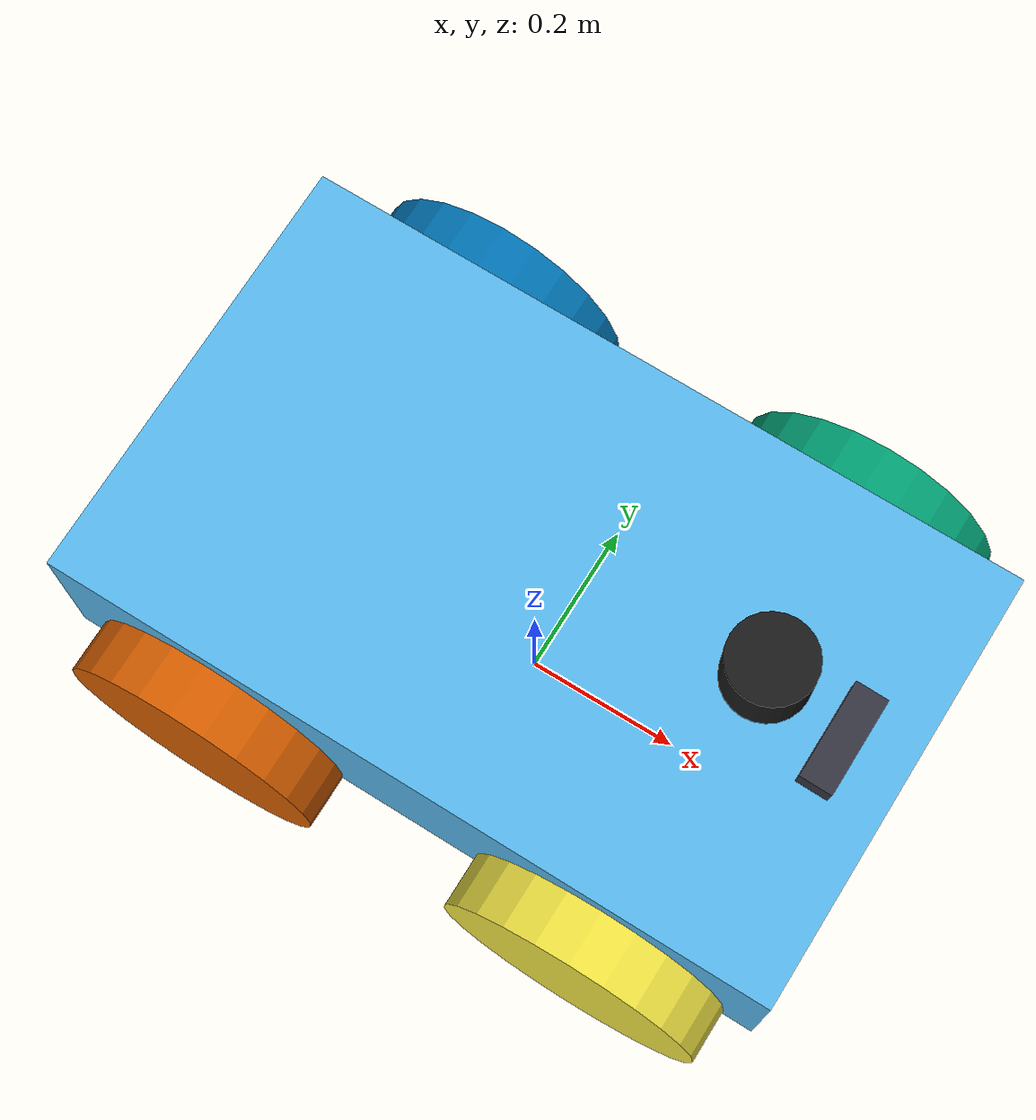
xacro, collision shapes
<?xml version="1.0"?>
<robot name="amr4" xmlns:xacro="http://www.ros.org/wiki/xacro">

  <!-- Base Footprint -->
  <link name="base_footprint" />

  <!-- Base Link (AMR-4 Chassis) -->
  <link name="base_link">
    <inertial>
      <origin xyz="0 0 0.05" rpy="0 0 0" />
      <mass value="45.0" />
      <inertia ixx="0.65" ixy="0.0" ixz="0.0" iyy="1.80" iyz="0.0" izz="2.10" />
    </inertial>
    <collision>
      <origin xyz="0 0 0.12" rpy="0 0 0" />
      <geometry>
        <box size="0.92 0.55 0.22" />
      </geometry>
    </collision>
    <visual>
      <origin xyz="0 0 0" rpy="0 0 0" />
      <geometry>
        <mesh filename="package://amr4_description/models/amr4/meshes/base_link.dae" />
      </geometry>
    </visual>
    <visual>
      <origin xyz="0 0 0" rpy="0 0 0" />
      <geometry>
        <mesh filename="package://amr4_description/models/amr4/meshes/top_chassis.dae" />
      </geometry>
    </visual>
    <visual>
      <origin xyz="0 0 0" rpy="0 0 0" />
      <geometry>
        <mesh filename="package://amr4_description/models/amr4/meshes/top_plate.dae" />
      </geometry>
    </visual>
    <visual>
      <origin xyz="0 0 0" rpy="0 0 0" />
      <geometry>
        <mesh filename="package://amr4_description/models/amr4/meshes/bumper.dae" />
      </geometry>
    </visual>
    <visual>
      <origin xyz="0 0 0" rpy="0 0 0" />
      <geometry>
        <mesh filename="package://amr4_description/models/amr4/meshes/user_rail.dae" />
      </geometry>
    </visual>
    <visual>
      <origin xyz="0 0 0" rpy="0 0 0" />
      <geometry>
        <mesh filename="package://amr4_description/models/amr4/meshes/jpl04_arch_nosensor.stl" />
      </geometry>
    </visual>
  </link>

  <joint name="base_footprint_joint" type="fixed">
    <parent link="base_footprint" />
    <child link="base_link" />
    <origin xyz="0 0 0.165" rpy="0 0 0" />
  </joint>

  <!-- ==================== 4 WHEELS ==================== -->
  <xacro:macro name="amr4_wheel" params="prefix x_offset y_offset">
    <link name="${prefix}_wheel_link">
      <inertial>
        <origin xyz="0 0 0" rpy="0 0 0" />
        <mass value="2.8" />
        <inertia ixx="0.025" ixy="0" ixz="0" iyy="0.045" iyz="0" izz="0.025" />
      </inertial>
      <collision>
        <origin xyz="0 0 0" rpy="1.570796 0 0" />
        <geometry>
          <cylinder radius="0.165" length="0.115" />
        </geometry>
      </collision>
      <visual>
        <origin xyz="0 0 0" rpy="0 0 0" />
        <geometry>
          <mesh filename="package://amr4_description/models/amr4/meshes/wheel.dae" />
        </geometry>
      </visual>
    </link>

    <joint name="${prefix}_wheel_joint" type="continuous">
      <parent link="base_link" />
      <child link="${prefix}_wheel_link" />
      <origin xyz="${x_offset} ${y_offset} 0.033" rpy="0 0 0" />
      <axis xyz="0 1 0" />
    </joint>
  </xacro:macro>

  <xacro:amr4_wheel prefix="front_left"  x_offset="0.256"  y_offset="0.285" />
  <xacro:amr4_wheel prefix="front_right" x_offset="0.256"  y_offset="-0.285" />
  <xacro:amr4_wheel prefix="rear_left"   x_offset="-0.256" y_offset="0.285" />
  <xacro:amr4_wheel prefix="rear_right"  x_offset="-0.256" y_offset="-0.285" />

  <!-- Include Sensors & Gazebo Control -->
  <xacro:include filename="amr4_sensors.xacro" />
  <xacro:include filename="amr4_gazebo.xacro" />

</robot>

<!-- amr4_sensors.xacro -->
<robot xmlns:xacro="http://www.ros.org/wiki/xacro">

  <!-- 1. 2D/3D LiDAR Sensor -->
  <link name="lidar_link">
    <inertial>
      <origin xyz="0 0 0" rpy="0 0 0" />
      <mass value="0.5" />
      <inertia ixx="0.001" ixy="0" ixz="0" iyy="0.001" iyz="0" izz="0.001" />
    </inertial>
    <visual>
      <origin xyz="0 0 0" rpy="0 0 0" />
      <geometry>
        <cylinder radius="0.05" length="0.07" />
      </geometry>
      <material name="lidar_mat">
        <color rgba="0.1 0.1 0.1 1.0" />
      </material>
    </visual>
    <collision>
      <origin xyz="0 0 0" rpy="0 0 0" />
      <geometry>
        <cylinder radius="0.05" length="0.07" />
      </geometry>
    </collision>
  </link>

  <joint name="lidar_joint" type="fixed">
    <parent link="base_link" />
    <child link="lidar_link" />
    <origin xyz="0.28 0.0 0.38" rpy="0 0 0" />
  </joint>

  <gazebo reference="lidar_link">
    <sensor name="gpu_lidar" type="gpu_lidar">
      <pose>0 0 0 0 0 0</pose>
      <topic>/scan</topic>
      <gz_frame_id>lidar_link</gz_frame_id>
      <update_rate>15.0</update_rate>
      <visualize>true</visualize>
      <ray>
        <scan>
          <horizontal>
            <samples>720</samples>
            <resolution>1</resolution>
            <min_angle>-3.14159265</min_angle>
            <max_angle>3.14159265</max_angle>
          </horizontal>
        </scan>
        <range>
          <min>0.50</min>
          <max>30.0</max>
          <resolution>0.01</resolution>
        </range>
        <noise>
          <type>gaussian</type>
          <mean>0.0</mean>
          <stddev>0.01</stddev>
        </noise>
      </ray>
    </sensor>
  </gazebo>

  <!-- 2. Forward RGB + Depth Camera -->
  <link name="camera_link">
    <inertial>
      <origin xyz="0 0 0" rpy="0 0 0" />
      <mass value="0.25" />
      <inertia ixx="0.0005" ixy="0" ixz="0" iyy="0.0005" iyz="0" izz="0.0005" />
    </inertial>
    <visual>
      <origin xyz="0 0 0" rpy="0 0 0" />
      <geometry>
        <box size="0.04 0.12 0.03" />
      </geometry>
      <material name="camera_mat">
        <color rgba="0.2 0.2 0.25 1.0" />
      </material>
    </visual>
    <collision>
      <origin xyz="0 0 0" rpy="0 0 0" />
      <geometry>
        <box size="0.04 0.12 0.03" />
      </geometry>
    </collision>
  </link>

  <joint name="camera_joint" type="fixed">
    <parent link="base_link" />
    <child link="camera_link" />
    <origin xyz="0.38 0.0 0.28" rpy="0 0.05 0" />
  </joint>

  <link name="camera_optical_frame" />
  <joint name="camera_optical_joint" type="fixed">
    <parent link="camera_link" />
    <child link="camera_optical_frame" />
    <origin xyz="0 0 0" rpy="-1.570796 0 -1.570796" />
  </joint>

  <!-- RGB Camera Sensor -->
  <gazebo reference="camera_link">
    <sensor name="rgb_camera" type="camera">
      <pose>0 0 0 0 0 0</pose>
      <topic>/camera/image_raw</topic>
      <gz_frame_id>camera_optical_frame</gz_frame_id>
      <update_rate>30.0</update_rate>
      <visualize>true</visualize>
      <camera>
        <horizontal_fov>1.4</horizontal_fov>
        <image>
          <width>640</width>
          <height>480</height>
          <format>R8G8B8</format>
        </image>
        <clip>
          <near>0.1</near>
          <far>60.0</far>
        </clip>
      </camera>
    </sensor>

    <!-- Depth Camera Sensor -->
    <sensor name="depth_camera" type="depth_camera">
      <pose>0 0 0 0 0 0</pose>
      <topic>/camera/depth/image_raw</topic>
      <gz_frame_id>camera_optical_frame</gz_frame_id>
      <update_rate>15.0</update_rate>
      <camera>
        <horizontal_fov>1.4</horizontal_fov>
        <image>
          <width>320</width>
          <height>240</height>
          <format>R_FLOAT32</format>
        </image>
        <clip>
          <near>0.2</near>
          <far>20.0</far>
        </clip>
      </camera>
    </sensor>
  </gazebo>

  <!-- 3. IMU Sensor -->
  <link name="imu_link" />
  <joint name="imu_joint" type="fixed">
    <parent link="base_link" />
    <child link="imu_link" />
    <origin xyz="0 0 0.1" rpy="0 0 0" />
  </joint>

  <gazebo reference="imu_link">
    <sensor name="imu_sensor" type="imu">
      <always_on>true</always_on>
      <update_rate>50</update_rate>
      <topic>/imu/data</topic>
      <gz_frame_id>imu_link</gz_frame_id>
      <imu>
        <angular_velocity>
          <x><noise type="gaussian"><mean>0.0</mean><stddev>1e-4</stddev></noise></x>
          <y><noise type="gaussian"><mean>0.0</mean><stddev>1e-4</stddev></noise></y>
          <z><noise type="gaussian"><mean>0.0</mean><stddev>1e-4</stddev></noise></z>
        </angular_velocity>
        <linear_acceleration>
          <x><noise type="gaussian"><mean>0.0</mean><stddev>1e-2</stddev></noise></x>
          <y><noise type="gaussian"><mean>0.0</mean><stddev>1e-2</stddev></noise></y>
          <z><noise type="gaussian"><mean>0.0</mean><stddev>1e-2</stddev></noise></z>
        </linear_acceleration>
      </imu>
    </sensor>
  </gazebo>

</robot>
